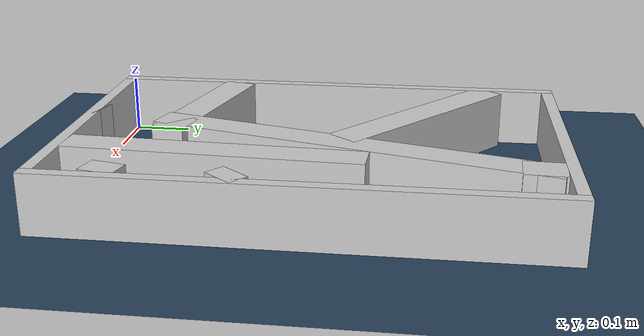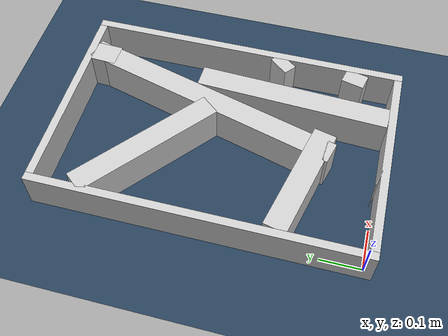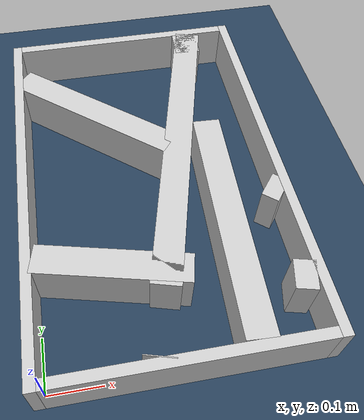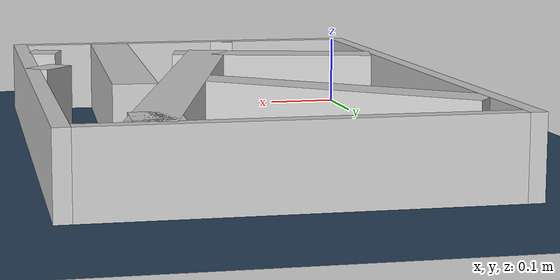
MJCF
<?xml version="1.0" ?>
<mujoco model="generated_real_template">
  <compiler angle="degree"/>
  <option timestep="0.002" integrator="implicitfast" iterations="100" cone="elliptic"/>
  <default>
    <geom density="1"/>
  </default>
  <asset>
    <texture builtin="gradient" height="3072" rgb1="0.3 0.5 0.7" rgb2="0 0 0" type="skybox" width="512"/>
    <texture builtin="checker" height="300" mark="edge" markrgb="0.8 0.8 0.8" name="groundplane" rgb1="0.2 0.3 0.4" rgb2="0.1 0.2 0.3" type="2d" width="300"/>
    <material name="groundplane" reflectance="0.2" texrepeat="5 5" texture="groundplane" texuniform="true"/>
  </asset>
  <worldbody>
    <light dir="0 0 -1" directional="true" pos="0 0 1.5"/>
    <geom name="floor" type="plane" condim="4" friction="0.5 0.005 0.001" material="groundplane" size="0 0 0.05"/>
    <body name="walls">
      <geom name="wall_boundary_left" type="box" condim="4" friction="1.0 0.005 0.0001" rgba="0.8 0.8 0.8 1" pos="-0.010000 0.387500 0.050000" euler="0 0 0.000000" size="0.010000 0.407500 0.050000"/>
      <geom name="wall_boundary_right" type="box" condim="4" friction="1.0 0.005 0.0001" rgba="0.8 0.8 0.8 1" pos="0.500000 0.387500 0.050000" euler="0 0 0.000000" size="0.010000 0.407500 0.050000"/>
      <geom name="wall_boundary_bottom" type="box" condim="4" friction="1.0 0.005 0.0001" rgba="0.8 0.8 0.8 1" pos="0.245000 -0.010000 0.050000" euler="0 0 0.000000" size="0.245000 0.010000 0.050000"/>
      <geom name="wall_boundary_top" type="box" condim="4" friction="1.0 0.005 0.0001" rgba="0.8 0.8 0.8 1" pos="0.245000 0.785000 0.050000" euler="0 0 0.000000" size="0.245000 0.010000 0.050000"/>
      <geom name="wall_inner_1_1" type="box" condim="4" friction="1.0 0.005 0.0001" rgba="0.8 0.8 0.8 1" pos="0.395675 0.742235 0.050000" euler="0 0 -92.546325" size="0.032797 0.028500 0.050000"/>
      <geom name="wall_inner_1_2" type="box" condim="4" friction="1.0 0.005 0.0001" rgba="0.8 0.8 0.8 1" pos="0.373373 0.240751 0.050000" euler="0 0 -92.546325" size="0.240989 0.028500 0.050000"/>
      <geom name="wall_inner_2_1" type="box" condim="4" friction="1.0 0.005 0.0001" rgba="0.8 0.8 0.8 1" pos="0.470075 0.097370 0.050000" euler="0 0 166.566105" size="0.020485 0.028500 0.050000"/>
      <geom name="wall_inner_2_2" type="box" condim="4" friction="1.0 0.005 0.0001" rgba="0.8 0.8 0.8 1" pos="0.141182 0.175929 0.050000" euler="0 0 166.566105" size="0.145153 0.028500 0.050000"/>
      <geom name="wall_inner_3_1" type="box" condim="4" friction="1.0 0.005 0.0001" rgba="0.8 0.8 0.8 1" pos="0.194531 0.000856 0.050000" euler="0 0 74.672594" size="0.000887 0.028500 0.050000"/>
      <geom name="wall_inner_3_2" type="box" condim="4" friction="1.0 0.005 0.0001" rgba="0.8 0.8 0.8 1" pos="0.316729 0.446701 0.050000" euler="0 0 74.672594" size="0.340407 0.028500 0.050000"/>
      <geom name="wall_inner_4_1" type="box" condim="4" friction="1.0 0.005 0.0001" rgba="0.8 0.8 0.8 1" pos="0.148664 0.556398 0.050000" euler="0 0 -39.581187" size="0.192890 0.028500 0.050000"/>
      <geom name="wall_inner_4_2" type="box" condim="4" friction="1.0 0.005 0.0001" rgba="0.8 0.8 0.8 1" pos="0.476529 0.285346 0.050000" euler="0 0 -39.581187" size="0.017478 0.028500 0.050000"/>
    </body>
  </worldbody>
</mujoco>
